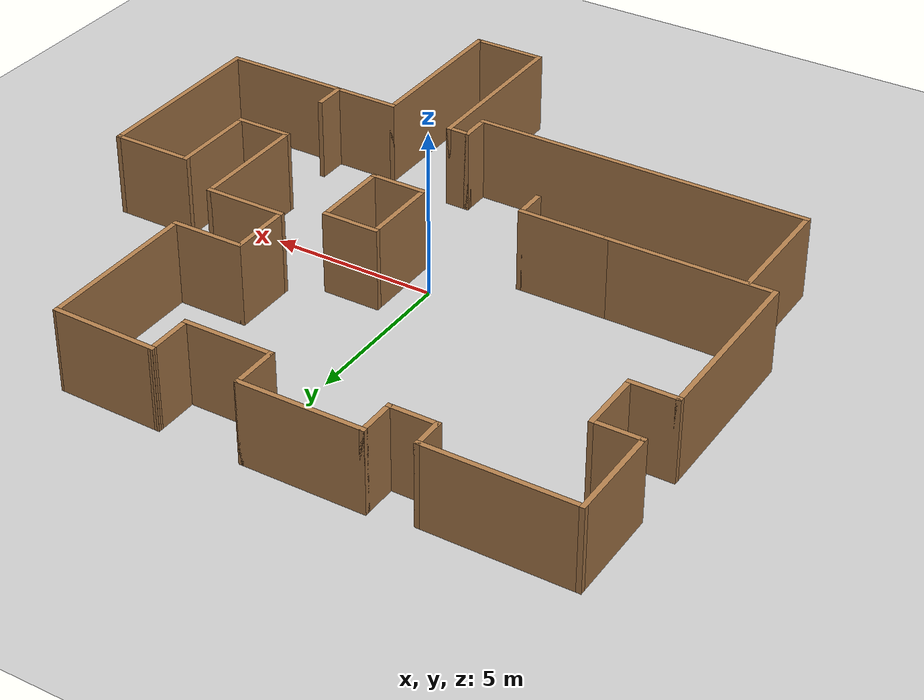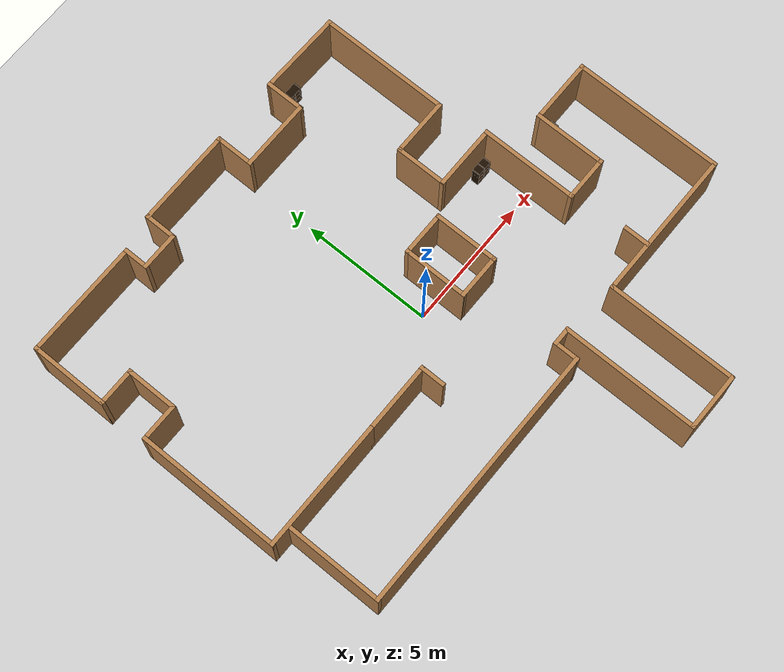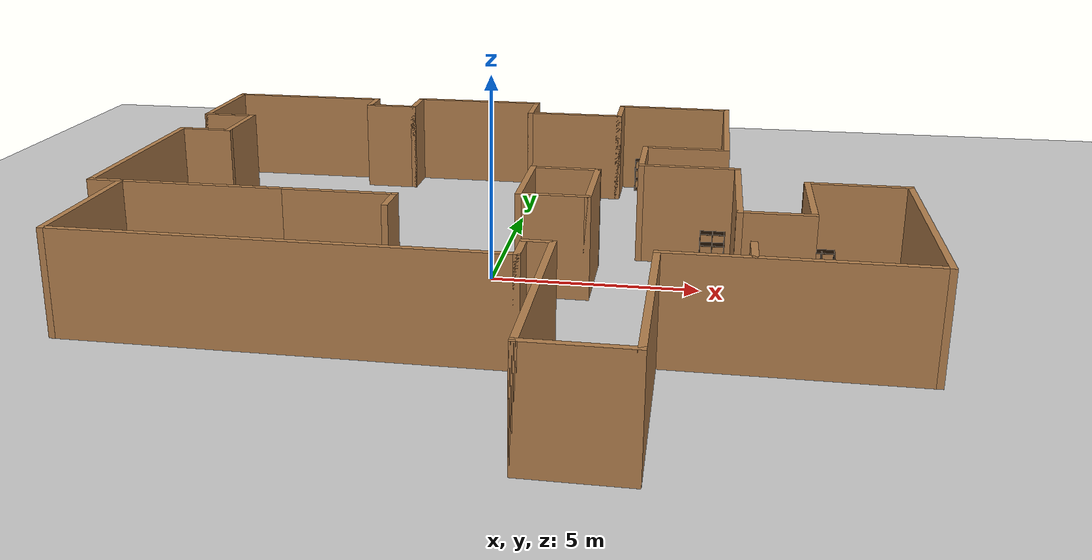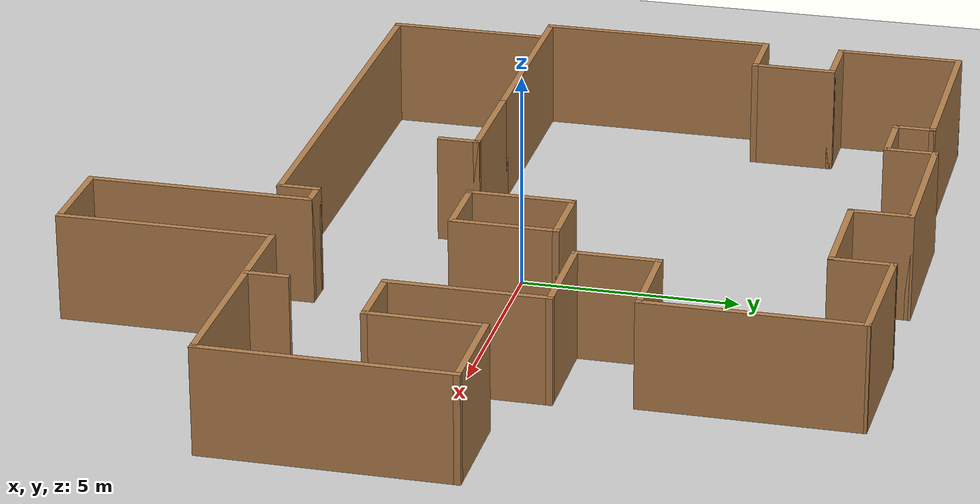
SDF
<sdf version="1.6">
 <world name="default">
  <light name="sun" type="directional">
   <pose>0 0 10 0 -0 0</pose>
   <diffuse>0.8 0.8 0.8 1</diffuse>
   <specular>0.2 0.2 0.2 1</specular>
   <attenuation>
    <range>1000</range>
    <constant>0.9</constant>
    <linear>0.01</linear>
    <quadratic>0.001</quadratic>
   </attenuation>
   <direction>-0.5 0.1 -0.9</direction>
  </light>
  <model name="ground_plane">
   <static>1</static>
   <link name="link">
    <collision name="collision">
     <geometry><plane><normal>0 0 1</normal><size>100 100</size></plane></geometry>
     <surface>
      <contact><collide_bitmask>65535</collide_bitmask></contact>
      <friction><ode><mu>100</mu><mu2>50</mu2></ode></friction>
     </surface>
    </collision>
    <visual name="visual">
     <cast_shadows>0</cast_shadows>
     <geometry><plane><normal>0 0 1</normal><size>100 100</size></plane></geometry>
     <material>
      <script><uri>file://media/materials/scripts/gazebo.material</uri><name>Gazebo/Grey</name></script>
     </material>
    </visual>
   </link>
  </model>
  <gravity>0 0 -9.8</gravity>
  <magnetic_field>6e-06 2.3e-05 -4.2e-05</magnetic_field>
  <atmosphere type="adiabatic"/>
  <physics name="default_physics" default="0" type="ode">
   <max_step_size>0.001</max_step_size>
   <real_time_factor>1</real_time_factor>
   <real_time_update_rate>1000</real_time_update_rate>
  </physics>
  <scene><ambient>0.4 0.4 0.4 1</ambient><background>0.7 0.7 0.7 1</background><shadows>1</shadows></scene>
  <audio><device>default</device></audio>
  <spherical_coordinates>
   <surface_model>EARTH_WGS84</surface_model>
   <latitude_deg>0</latitude_deg>
   <longitude_deg>0</longitude_deg>
   <elevation>0</elevation>
   <heading_deg>0</heading_deg>
  </spherical_coordinates>
  <model name="map_102">
   <pose>0.145252 -0.336175 0 0 -0 0</pose>
   <link name="Wall_21">
    <collision name="Wall_21_Collision">
     <geometry><box><size>2 0.15 2.5</size></box></geometry>
     <pose>0 0 1.25 0 -0 0</pose>
    </collision>
    <visual name="Wall_21_Visual">
     <pose>0 0 1.25 0 -0 0</pose>
     <geometry><box><size>2 0.15 2.5</size></box></geometry>
     <material>
      <script><uri>file://media/materials/scripts/gazebo.material</uri><name>Gazebo/Wood</name></script>
      <ambient>1 1 1 1</ambient>
     </material>
     <meta><layer>0</layer></meta>
    </visual>
    <pose>-8.23307 5.08367 0 0 -0 -1.5708</pose>
   </link>
   <link name="Wall_22">
    <collision name="Wall_22_Collision">
     <geometry><box><size>1.5 0.15 2.5</size></box></geometry>
     <pose>0 0 1.25 0 -0 0</pose>
    </collision>
    <visual name="Wall_22_Visual">
     <pose>0 0 1.25 0 -0 0</pose>
     <geometry><box><size>1.5 0.15 2.5</size></box></geometry>
     <material>
      <script><uri>file://media/materials/scripts/gazebo.material</uri><name>Gazebo/Wood</name></script>
      <ambient>1 1 1 1</ambient>
     </material>
     <meta><layer>0</layer></meta>
    </visual>
    <pose>-8.90807 4.15867 0 0 -0 3.14159</pose>
   </link>
   <link name="Wall_23">
    <collision name="Wall_23_Collision">
     <geometry><box><size>5.5 0.15 2.5</size></box></geometry>
     <pose>0 0 1.25 0 -0 0</pose>
    </collision>
    <visual name="Wall_23_Visual">
     <pose>0 0 1.25 0 -0 0</pose>
     <geometry><box><size>5.5 0.15 2.5</size></box></geometry>
     <material>
      <script><uri>file://media/materials/scripts/gazebo.material</uri><name>Gazebo/Wood</name></script>
      <ambient>1 1 1 1</ambient>
     </material>
     <meta><layer>0</layer></meta>
    </visual>
    <pose>-9.58307 1.48367 0 0 -0 -1.5708</pose>
   </link>
   <link name="Wall_24">
    <collision name="Wall_24_Collision">
     <geometry><box><size>5 0.15 2.5</size></box></geometry>
     <pose>0 0 1.25 0 -0 0</pose>
    </collision>
    <visual name="Wall_24_Visual">
     <pose>0 0 1.25 0 -0 0</pose>
     <geometry><box><size>5 0.15 2.5</size></box></geometry>
     <material>
      <script><uri>file://media/materials/scripts/gazebo.material</uri><name>Gazebo/Wood</name></script>
      <ambient>1 1 1 1</ambient>
     </material>
     <meta><layer>0</layer></meta>
    </visual>
    <pose>-7.15807 -1.19133 0 0 -0 0</pose>
   </link>
   <link name="Wall_28">
    <collision name="Wall_28_Collision">
     <geometry><box><size>3.75 0.15 2.5</size></box></geometry>
     <pose>0 0 1.25 0 -0 0</pose>
    </collision>
    <visual name="Wall_28_Visual">
     <pose>0 0 1.25 0 -0 0</pose>
     <geometry><box><size>3.75 0.15 2.5</size></box></geometry>
     <material>
      <script><uri>file://media/materials/scripts/gazebo.material</uri><name>Gazebo/Wood</name></script>
      <ambient>1 1 1 1</ambient>
     </material>
     <meta><layer>0</layer></meta>
    </visual>
    <pose>-8.81693 -3.06034 0 0 -0 -1.5708</pose>
   </link>
   <link name="Wall_38">
    <collision name="Wall_38_Collision">
     <geometry><box><size>10.25 0.15 2.5</size></box></geometry>
     <pose>0 0 1.25 0 -0 0</pose>
    </collision>
    <visual name="Wall_38_Visual">
     <pose>0 0 1.25 0 -0 0</pose>
     <geometry><box><size>10.25 0.15 2.5</size></box></geometry>
     <material>
      <script><uri>file://media/materials/scripts/gazebo.material</uri><name>Gazebo/Wood</name></script>
      <ambient>1 1 1 1</ambient>
     </material>
     <meta><layer>0</layer></meta>
    </visual>
    <pose>-3.76693 -4.86034 0 0 -0 0</pose>
   </link>
   <link name="Wall_39">
    <collision name="Wall_39_Collision">
     <geometry><box><size>1 0.15 2.5</size></box></geometry>
     <pose>0 0 1.25 0 -0 0</pose>
    </collision>
    <visual name="Wall_39_Visual">
     <pose>0 0 1.25 0 -0 0</pose>
     <geometry><box><size>1 0.15 2.5</size></box></geometry>
     <material>
      <script><uri>file://media/materials/scripts/gazebo.material</uri><name>Gazebo/Wood</name></script>
      <ambient>1 1 1 1</ambient>
     </material>
     <meta><layer>0</layer></meta>
    </visual>
    <pose>1.28307 -4.43534 0 0 -0 1.5708</pose>
   </link>
   <link name="Wall_40">
    <collision name="Wall_40_Collision">
     <geometry><box><size>0.75 0.15 2.5</size></box></geometry>
     <pose>0 0 1.25 0 -0 0</pose>
    </collision>
    <visual name="Wall_40_Visual">
     <pose>0 0 1.25 0 -0 0</pose>
     <geometry><box><size>0.75 0.15 2.5</size></box></geometry>
     <material>
      <script><uri>file://media/materials/scripts/gazebo.material</uri><name>Gazebo/Wood</name></script>
      <ambient>1 1 1 1</ambient>
     </material>
     <meta><layer>0</layer></meta>
    </visual>
    <pose>1.58307 -4.01034 0 0 -0 0</pose>
   </link>
   <link name="Wall_41">
    <collision name="Wall_41_Collision">
     <geometry><box><size>5.25 0.15 2.5</size></box></geometry>
     <pose>0 0 1.25 0 -0 0</pose>
    </collision>
    <visual name="Wall_41_Visual">
     <pose>0 0 1.25 0 -0 0</pose>
     <geometry><box><size>5.25 0.15 2.5</size></box></geometry>
     <material>
      <script><uri>file://media/materials/scripts/gazebo.material</uri><name>Gazebo/Wood</name></script>
      <ambient>1 1 1 1</ambient>
     </material>
     <meta><layer>0</layer></meta>
    </visual>
    <pose>1.88307 -6.56034 0 0 -0 -1.5708</pose>
   </link>
   <link name="Wall_42">
    <collision name="Wall_42_Collision">
     <geometry><box><size>2.25 0.15 2.5</size></box></geometry>
     <pose>0 0 1.25 0 -0 0</pose>
    </collision>
    <visual name="Wall_42_Visual">
     <pose>0 0 1.25 0 -0 0</pose>
     <geometry><box><size>2.25 0.15 2.5</size></box></geometry>
     <material>
      <script><uri>file://media/materials/scripts/gazebo.material</uri><name>Gazebo/Wood</name></script>
      <ambient>1 1 1 1</ambient>
     </material>
     <meta><layer>0</layer></meta>
    </visual>
    <pose>2.93307 -9.11034 0 0 -0 0</pose>
   </link>
   <link name="Wall_43">
    <collision name="Wall_43_Collision">
     <geometry><box><size>5 0.15 2.5</size></box></geometry>
     <pose>0 0 1.25 0 -0 0</pose>
    </collision>
    <visual name="Wall_43_Visual">
     <pose>0 0 1.25 0 -0 0</pose>
     <geometry><box><size>5 0.15 2.5</size></box></geometry>
     <material>
      <script><uri>file://media/materials/scripts/gazebo.material</uri><name>Gazebo/Wood</name></script>
      <ambient>1 1 1 1</ambient>
     </material>
     <meta><layer>0</layer></meta>
    </visual>
    <pose>3.98307 -6.68534 0 0 -0 1.5708</pose>
   </link>
   <link name="Wall_44">
    <collision name="Wall_44_Collision">
     <geometry><box><size>5.75 0.15 2.5</size></box></geometry>
     <pose>0 0 1.25 0 -0 0</pose>
    </collision>
    <visual name="Wall_44_Visual">
     <pose>0 0 1.25 0 -0 0</pose>
     <geometry><box><size>5.75 0.15 2.5</size></box></geometry>
     <material>
      <script><uri>file://media/materials/scripts/gazebo.material</uri><name>Gazebo/Wood</name></script>
      <ambient>1 1 1 1</ambient>
     </material>
     <meta><layer>0</layer></meta>
    </visual>
    <pose>6.78307 -4.26034 0 0 -0 0</pose>
   </link>
   <link name="Wall_46">
    <collision name="Wall_46_Collision">
     <geometry><box><size>5.75 0.15 2.5</size></box></geometry>
     <pose>0 0 1.25 0 -0 0</pose>
    </collision>
    <visual name="Wall_46_Visual">
     <pose>0 0 1.25 0 -0 0</pose>
     <geometry><box><size>5.75 0.15 2.5</size></box></geometry>
     <material>
      <script><uri>file://media/materials/scripts/gazebo.material</uri><name>Gazebo/Wood</name></script>
      <ambient>1 1 1 1</ambient>
     </material>
     <meta><layer>0</layer></meta>
    </visual>
    <pose>9.58307 -1.46034 0 0 -0 1.5708</pose>
   </link>
   <link name="Wall_47">
    <collision name="Wall_47_Collision">
     <geometry><box><size>2.5 0.15 2.5</size></box></geometry>
     <pose>0 0 1.25 0 -0 0</pose>
    </collision>
    <visual name="Wall_47_Visual">
     <pose>0 0 1.25 0 -0 0</pose>
     <geometry><box><size>2.5 0.15 2.5</size></box></geometry>
     <material>
      <script><uri>file://media/materials/scripts/gazebo.material</uri><name>Gazebo/Wood</name></script>
      <ambient>1 1 1 1</ambient>
     </material>
     <meta><layer>0</layer></meta>
    </visual>
    <pose>8.40807 1.33966 0 0 -0 3.14159</pose>
   </link>
   <link name="Wall_48">
    <collision name="Wall_48_Collision">
     <geometry><box><size>2.75 0.15 2.5</size></box></geometry>
     <pose>0 0 1.25 0 -0 0</pose>
    </collision>
    <visual name="Wall_48_Visual">
     <pose>0 0 1.25 0 -0 0</pose>
     <geometry><box><size>2.75 0.15 2.5</size></box></geometry>
     <material>
      <script><uri>file://media/materials/scripts/gazebo.material</uri><name>Gazebo/Wood</name></script>
      <ambient>1 1 1 1</ambient>
     </material>
     <meta><layer>0</layer></meta>
    </visual>
    <pose>7.23307 0.039658 0 0 -0 -1.5708</pose>
   </link>
   <link name="Wall_49">
    <collision name="Wall_49_Collision">
     <geometry><box><size>1.75 0.15 2.5</size></box></geometry>
     <pose>0 0 1.25 0 -0 0</pose>
    </collision>
    <visual name="Wall_49_Visual">
     <pose>0 0 1.25 0 -0 0</pose>
     <geometry><box><size>1.75 0.15 2.5</size></box></geometry>
     <material>
      <script><uri>file://media/materials/scripts/gazebo.material</uri><name>Gazebo/Wood</name></script>
      <ambient>1 1 1 1</ambient>
     </material>
     <meta><layer>0</layer></meta>
    </visual>
    <pose>6.43307 -1.26034 0 0 -0 3.14159</pose>
   </link>
   <link name="Wall_50">
    <collision name="Wall_50_Collision">
     <geometry><box><size>3.75 0.15 2.5</size></box></geometry>
     <pose>0 0 1.25 0 -0 0</pose>
    </collision>
    <visual name="Wall_50_Visual">
     <pose>0 0 1.25 0 -0 0</pose>
     <geometry><box><size>3.75 0.15 2.5</size></box></geometry>
     <material>
      <script><uri>file://media/materials/scripts/gazebo.material</uri><name>Gazebo/Wood</name></script>
      <ambient>1 1 1 1</ambient>
     </material>
     <meta><layer>0</layer></meta>
    </visual>
    <pose>5.63307 0.539658 0 0 -0 1.5708</pose>
   </link>
   <link name="Wall_57">
    <collision name="Wall_57_Collision">
     <geometry><box><size>5 0.15 2.5</size></box></geometry>
     <pose>0 0 1.25 0 -0 0</pose>
    </collision>
    <visual name="Wall_57_Visual">
     <pose>0 0 1.25 0 -0 0</pose>
     <geometry><box><size>5 0.15 2.5</size></box></geometry>
     <material>
      <script><uri>file://media/materials/scripts/gazebo.material</uri><name>Gazebo/Wood</name></script>
      <ambient>1 1 1 1</ambient>
     </material>
     <meta><layer>0</layer></meta>
    </visual>
    <pose>5.38307 6.61466 0 0 -0 1.5708</pose>
   </link>
   <link name="Wall_59">
    <collision name="Wall_59_Collision">
     <geometry><box><size>4.5 0.15 2.5</size></box></geometry>
     <pose>0 0 1.25 0 -0 0</pose>
    </collision>
    <visual name="Wall_59_Visual">
     <pose>0 0 1.25 0 -0 0</pose>
     <geometry><box><size>4.5 0.15 2.5</size></box></geometry>
     <material>
      <script><uri>file://media/materials/scripts/gazebo.material</uri><name>Gazebo/Wood</name></script>
      <ambient>1 1 1 1</ambient>
     </material>
     <meta><layer>0</layer></meta>
    </visual>
    <pose>-7.40807 8.85867 0 0 -0 0</pose>
   </link>
   <link name="Wall_60">
    <collision name="Wall_60_Collision">
     <geometry><box><size>1 0.15 2.5</size></box></geometry>
     <pose>0 0 1.25 0 -0 0</pose>
    </collision>
    <visual name="Wall_60_Visual">
     <pose>0 0 1.25 0 -0 0</pose>
     <geometry><box><size>1 0.15 2.5</size></box></geometry>
     <material>
      <script><uri>file://media/materials/scripts/gazebo.material</uri><name>Gazebo/Wood</name></script>
      <ambient>1 1 1 1</ambient>
     </material>
     <meta><layer>0</layer></meta>
    </visual>
    <pose>-5.23307 8.43367 0 0 -0 -1.5708</pose>
   </link>
   <link name="Wall_61">
    <collision name="Wall_61_Collision">
     <geometry><box><size>1.5 0.15 2.5</size></box></geometry>
     <pose>0 0 1.25 0 -0 0</pose>
    </collision>
    <visual name="Wall_61_Visual">
     <pose>0 0 1.25 0 -0 0</pose>
     <geometry><box><size>1.5 0.15 2.5</size></box></geometry>
     <material>
      <script><uri>file://media/materials/scripts/gazebo.material</uri><name>Gazebo/Wood</name></script>
      <ambient>1 1 1 1</ambient>
     </material>
     <meta><layer>0</layer></meta>
    </visual>
    <pose>-4.55807 8.00867 0 0 -0 0</pose>
   </link>
   <link name="Wall_62">
    <collision name="Wall_62_Collision">
     <geometry><box><size>1.25 0.15 2.5</size></box></geometry>
     <pose>0 0 1.25 0 -0 0</pose>
    </collision>
    <visual name="Wall_62_Visual">
     <pose>0 0 1.25 0 -0 0</pose>
     <geometry><box><size>1.25 0.15 2.5</size></box></geometry>
     <material>
      <script><uri>file://media/materials/scripts/gazebo.material</uri><name>Gazebo/Wood</name></script>
      <ambient>1 1 1 1</ambient>
     </material>
     <meta><layer>0</layer></meta>
    </visual>
    <pose>-3.88307 8.55867 0 0 -0 1.5708</pose>
   </link>
   <link name="Wall_63">
    <collision name="Wall_63_Collision">
     <geometry><box><size>3.75 0.15 2.5</size></box></geometry>
     <pose>0 0 1.25 0 -0 0</pose>
    </collision>
    <visual name="Wall_63_Visual">
     <pose>0 0 1.25 0 -0 0</pose>
     <geometry><box><size>3.75 0.15 2.5</size></box></geometry>
     <material>
      <script><uri>file://media/materials/scripts/gazebo.material</uri><name>Gazebo/Wood</name></script>
      <ambient>1 1 1 1</ambient>
     </material>
     <meta><layer>0</layer></meta>
    </visual>
    <pose>-2.08307 9.10867 0 0 -0 0</pose>
   </link>
   <link name="Wall_64">
    <collision name="Wall_64_Collision">
     <geometry><box><size>1.5 0.15 2.5</size></box></geometry>
     <pose>0 0 1.25 0 -0 0</pose>
    </collision>
    <visual name="Wall_64_Visual">
     <pose>0 0 1.25 0 -0 0</pose>
     <geometry><box><size>1.5 0.15 2.5</size></box></geometry>
     <material>
      <script><uri>file://media/materials/scripts/gazebo.material</uri><name>Gazebo/Wood</name></script>
      <ambient>1 1 1 1</ambient>
     </material>
     <meta><layer>0</layer></meta>
    </visual>
    <pose>-0.28307 8.43367 0 0 -0 -1.5708</pose>
   </link>
   <link name="Wall_65">
    <collision name="Wall_65_Collision">
     <geometry><box><size>2.75 0.15 2.5</size></box></geometry>
     <pose>0 0 1.25 0 -0 0</pose>
    </collision>
    <visual name="Wall_65_Visual">
     <pose>0 0 1.25 0 -0 0</pose>
     <geometry><box><size>2.75 0.15 2.5</size></box></geometry>
     <material>
      <script><uri>file://media/materials/scripts/gazebo.material</uri><name>Gazebo/Wood</name></script>
      <ambient>1 1 1 1</ambient>
     </material>
     <meta><layer>0</layer></meta>
    </visual>
    <pose>1.01693 7.75867 0 0 -0 0</pose>
   </link>
   <link name="Wall_66">
    <collision name="Wall_66_Collision">
     <geometry><box><size>1.5 0.15 2.5</size></box></geometry>
     <pose>0 0 1.25 0 -0 0</pose>
    </collision>
    <visual name="Wall_66_Visual">
     <pose>0 0 1.25 0 -0 0</pose>
     <geometry><box><size>1.5 0.15 2.5</size></box></geometry>
     <material>
      <script><uri>file://media/materials/scripts/gazebo.material</uri><name>Gazebo/Wood</name></script>
      <ambient>1 1 1 1</ambient>
     </material>
     <meta><layer>0</layer></meta>
    </visual>
    <pose>2.31693 8.43367 0 0 -0 1.5708</pose>
   </link>
   <link name="Wall_67">
    <collision name="Wall_67_Collision">
     <geometry><box><size>3.21692 0.15 2.5</size></box></geometry>
     <pose>0 0 1.25 0 -0 0</pose>
    </collision>
    <visual name="Wall_67_Visual">
     <pose>0 0 1.25 0 -0 0</pose>
     <geometry><box><size>3.21692 0.15 2.5</size></box></geometry>
     <material>
      <script><uri>file://media/materials/scripts/gazebo.material</uri><name>Gazebo/Wood</name></script>
      <ambient>1 1 1 1</ambient>
     </material>
     <meta><layer>0</layer></meta>
    </visual>
    <pose>3.85 9.07417 0 0 -0 -0.022505</pose>
   </link>
   <link name="Wall_69">
    <collision name="Wall_69_Collision">
     <geometry><box><size>2.5 0.15 2.5</size></box></geometry>
     <pose>0 0 1.25 0 -0 0</pose>
    </collision>
    <visual name="Wall_69_Visual">
     <pose>0 0 1.25 0 -0 0</pose>
     <geometry><box><size>2.5 0.15 2.5</size></box></geometry>
     <material>
      <script><uri>file://media/materials/scripts/gazebo.material</uri><name>Gazebo/Wood</name></script>
      <ambient>1 1 1 1</ambient>
     </material>
     <meta><layer>0</layer></meta>
    </visual>
    <pose>4.45807 2.33966 0 0 -0 3.14159</pose>
   </link>
   <link name="Wall_7">
    <collision name="Wall_7_Collision">
     <geometry><box><size>3 0.15 2.5</size></box></geometry>
     <pose>0 0 1.25 0 -0 0</pose>
    </collision>
    <visual name="Wall_7_Visual">
     <pose>0 0 1.25 0 -0 0</pose>
     <geometry><box><size>3 0.15 2.5</size></box></geometry>
     <material>
      <script><uri>file://media/materials/scripts/gazebo.material</uri><name>Gazebo/Wood</name></script>
      <ambient>1 1 1 1</ambient>
     </material>
     <meta><layer>0</layer></meta>
    </visual>
    <pose>-9.58307 7.43367 0 0 -0 -1.5708</pose>
   </link>
   <link name="Wall_70">
    <collision name="Wall_70_Collision">
     <geometry><box><size>2 0.15 2.5</size></box></geometry>
     <pose>0 0 1.25 0 -0 0</pose>
    </collision>
    <visual name="Wall_70_Visual">
     <pose>0 0 1.25 0 -0 0</pose>
     <geometry><box><size>2 0.15 2.5</size></box></geometry>
     <material>
      <script><uri>file://media/materials/scripts/gazebo.material</uri><name>Gazebo/Wood</name></script>
      <ambient>1 1 1 1</ambient>
     </material>
     <meta><layer>0</layer></meta>
    </visual>
    <pose>3.28307 3.26466 0 0 -0 1.5708</pose>
   </link>
   <link name="Wall_72">
    <collision name="Wall_72_Collision">
     <geometry><box><size>2.25 0.15 2.5</size></box></geometry>
     <pose>0 0 1.25 0 -0 0</pose>
    </collision>
    <visual name="Wall_72_Visual">
     <pose>0 0 1.25 0 -0 0</pose>
     <geometry><box><size>2.25 0.15 2.5</size></box></geometry>
     <material>
      <script><uri>file://media/materials/scripts/gazebo.material</uri><name>Gazebo/Wood</name></script>
      <ambient>1 1 1 1</ambient>
     </material>
     <meta><layer>0</layer></meta>
    </visual>
    <pose>4.33307 4.18966 0 0 -0 3.14159</pose>
   </link>
   <link name="Wall_74">
    <collision name="Wall_74_Collision">
     <geometry><box><size>2.5 0.15 2.5</size></box></geometry>
     <pose>0 0 1.25 0 -0 0</pose>
    </collision>
    <visual name="Wall_74_Visual">
     <pose>0 0 1.25 0 -0 0</pose>
     <geometry><box><size>2.5 0.15 2.5</size></box></geometry>
     <material>
      <script><uri>file://media/materials/scripts/gazebo.material</uri><name>Gazebo/Wood</name></script>
      <ambient>1 1 1 1</ambient>
     </material>
     <meta><layer>0</layer></meta>
    </visual>
    <pose>0.658363 0.517996 0 0 -0 -1.5708</pose>
   </link>
   <link name="Wall_75">
    <collision name="Wall_75_Collision">
     <geometry><box><size>1.75 0.15 2.5</size></box></geometry>
     <pose>0 0 1.25 0 -0 0</pose>
    </collision>
    <visual name="Wall_75_Visual">
     <pose>0 0 1.25 0 -0 0</pose>
     <geometry><box><size>1.75 0.15 2.5</size></box></geometry>
     <material>
      <script><uri>file://media/materials/scripts/gazebo.material</uri><name>Gazebo/Wood</name></script>
      <ambient>1 1 1 1</ambient>
     </material>
     <meta><layer>0</layer></meta>
    </visual>
    <pose>1.45836 -0.657004 0 0 -0 0</pose>
   </link>
   <link name="Wall_76">
    <collision name="Wall_76_Collision">
     <geometry><box><size>2.5 0.15 2.5</size></box></geometry>
     <pose>0 0 1.25 0 -0 0</pose>
    </collision>
    <visual name="Wall_76_Visual">
     <pose>0 0 1.25 0 -0 0</pose>
     <geometry><box><size>2.5 0.15 2.5</size></box></geometry>
     <material>
      <script><uri>file://media/materials/scripts/gazebo.material</uri><name>Gazebo/Wood</name></script>
      <ambient>1 1 1 1</ambient>
     </material>
     <meta><layer>0</layer></meta>
    </visual>
    <pose>2.25836 0.517996 0 0 -0 1.5708</pose>
   </link>
   <link name="Wall_77">
    <collision name="Wall_77_Collision">
     <geometry><box><size>1.75 0.15 2.5</size></box></geometry>
     <pose>0 0 1.25 0 -0 0</pose>
    </collision>
    <visual name="Wall_77_Visual">
     <pose>0 0 1.25 0 -0 0</pose>
     <geometry><box><size>1.75 0.15 2.5</size></box></geometry>
     <material>
      <script><uri>file://media/materials/scripts/gazebo.material</uri><name>Gazebo/Wood</name></script>
      <ambient>1 1 1 1</ambient>
     </material>
     <meta><layer>0</layer></meta>
    </visual>
    <pose>1.45836 1.693 0 0 -0 3.14159</pose>
   </link>
   <link name="Wall_79">
    <collision name="Wall_79_Collision">
     <geometry><box><size>2.75 0.15 2.5</size></box></geometry>
     <pose>0 0 1.25 0 -0 0</pose>
    </collision>
    <visual name="Wall_79_Visual">
     <pose>0 0 1.25 0 -0 0</pose>
     <geometry><box><size>2.75 0.15 2.5</size></box></geometry>
     <material>
      <script><uri>file://media/materials/scripts/gazebo.material</uri><name>Gazebo/Wood</name></script>
      <ambient>1 1 1 1</ambient>
     </material>
     <meta><layer>0</layer></meta>
    </visual>
    <pose>-3.43307 -1.19133 0 0 -0 0</pose>
   </link>
   <link name="Wall_8">
    <collision name="Wall_8_Collision">
     <geometry><box><size>1.5 0.15 2.5</size></box></geometry>
     <pose>0 0 1.25 0 -0 0</pose>
    </collision>
    <visual name="Wall_8_Visual">
     <pose>0 0 1.25 0 -0 0</pose>
     <geometry><box><size>1.5 0.15 2.5</size></box></geometry>
     <material>
      <script><uri>file://media/materials/scripts/gazebo.material</uri><name>Gazebo/Wood</name></script>
      <ambient>1 1 1 1</ambient>
     </material>
     <meta><layer>0</layer></meta>
    </visual>
    <pose>-8.90807 6.00867 0 0 -0 0</pose>
   </link>
   <link name="Wall_80">
    <collision name="Wall_80_Collision">
     <geometry><box><size>1 0.15 2.5</size></box></geometry>
     <pose>0 0 1.25 0 -0 0</pose>
    </collision>
    <visual name="Wall_80_Visual">
     <pose>0 0 1.25 0 -0 0</pose>
     <geometry><box><size>1 0.15 2.5</size></box></geometry>
     <material>
      <script><uri>file://media/materials/scripts/gazebo.material</uri><name>Gazebo/Wood</name></script>
      <ambient>1 1 1 1</ambient>
     </material>
     <meta><layer>0</layer></meta>
    </visual>
    <pose>-2.13307 -1.61633 0 0 -0 -1.5708</pose>
   </link>
   <link name="Wall_83">
    <collision name="Wall_83_Collision">
     <geometry><box><size>1 0.15 2.5</size></box></geometry>
     <pose>0 0 1.25 0 -0 0</pose>
    </collision>
    <visual name="Wall_83_Visual">
     <pose>0 0 1.25 0 -0 0</pose>
     <geometry><box><size>1 0.15 2.5</size></box></geometry>
     <material>
      <script><uri>file://media/materials/scripts/gazebo.material</uri><name>Gazebo/Wood</name></script>
      <ambient>1 1 1 1</ambient>
     </material>
     <meta><layer>0</layer></meta>
    </visual>
    <pose>5.88823 -3.78868 0 0 -0 1.5708</pose>
   </link>
   <static>1</static>
  </model>
  <model name="6_Cube_StorageE">
   <link name="Wall_0">
    <pose>0 0 0.01 0 -0 0</pose>
    <inertial>
     <mass>1.6201</mass>
     <inertia><ixx>0.0119</ixx><iyy>0.0631</iyy><izz>0.0513</izz><ixy>0</ixy><ixz>0</ixz><iyz>0</iyz></inertia>
    </inertial>
    <collision name="Wall_0_Collision"><geometry><box><size>0.616 0.296 0.02</size></box></geometry></collision>
    <visual name="Wall_0_Visual">
     <geometry><box><size>0.616 0.296 0.02</size></box></geometry>
     <material>
      <script><uri>file://media/materials/scripts/gazebo.material</uri><name>Gazebo/Grey</name></script>
      <ambient>0.105882 0.0509804 0 1</ambient>
     </material>
    </visual>
   </link>
   <joint name="0_2" type="fixed">
    <pose>-0.308 0 0 0 -0 0</pose>
    <parent>Wall_2</parent>
    <child>Wall_0</child>
    <axis>
     <xyz>1 0 0</xyz>
     <use_parent_model_frame>0</use_parent_model_frame>
     <limit><lower>-1e+16</lower><upper>1e+16</upper></limit>
    </axis>
   </joint>
   <joint name="0_12" type="fixed">
    <parent>Wall_12</parent>
    <child>Wall_0</child>
    <axis>
     <xyz>0 0 1</xyz>
     <use_parent_model_frame>0</use_parent_model_frame>
     <limit><lower>-1e+16</lower><upper>1e+16</upper></limit>
    </axis>
   </joint>
   <joint name="0_4" type="fixed">
    <pose>0.308 0 0 0 -0 0</pose>
    <parent>Wall_4</parent>
    <child>Wall_0</child>
    <axis>
     <xyz>1 0 0</xyz>
     <use_parent_model_frame>0</use_parent_model_frame>
     <limit><lower>-1e+16</lower><upper>1e+16</upper></limit>
    </axis>
   </joint>
   <link name="Wall_10">
    <pose>0 0 0.61 0 -0 0</pose>
    <inertial>
     <mass>1.6201</mass>
     <inertia><ixx>0.0119</ixx><iyy>0.0631</iyy><izz>0.0513</izz><ixy>0</ixy><ixz>0</ixz><iyz>0</iyz></inertia>
    </inertial>
    <collision name="Wall_10_Collision"><geometry><box><size>0.616 0.296 0.02</size></box></geometry></collision>
    <visual name="Wall_10_Visual">
     <geometry><box><size>0.616 0.296 0.02</size></box></geometry>
     <material>
      <script><uri>file://media/materials/scripts/gazebo.material</uri><name>Gazebo/Grey</name></script>
      <ambient>0.105882 0.0509804 0 1</ambient>
     </material>
    </visual>
   </link>
   <joint name="10_2" type="fixed">
    <pose>-0.308 0 0 0 -0 0</pose>
    <parent>Wall_2</parent>
    <child>Wall_10</child>
    <axis>
     <xyz>1 0 0</xyz>
     <use_parent_model_frame>0</use_parent_model_frame>
     <limit><lower>-1e+16</lower><upper>1e+16</upper></limit>
    </axis>
   </joint>
   <joint name="10_12" type="fixed">
    <parent>Wall_12</parent>
    <child>Wall_10</child>
    <axis>
     <xyz>0 0 1</xyz>
     <use_parent_model_frame>0</use_parent_model_frame>
     <limit><lower>-1e+16</lower><upper>1e+16</upper></limit>
    </axis>
   </joint>
   <joint name="10_4" type="fixed">
    <pose>0.308 0 0 0 -0 0</pose>
    <parent>Wall_4</parent>
    <child>Wall_10</child>
    <axis>
     <xyz>1 0 0</xyz>
     <use_parent_model_frame>0</use_parent_model_frame>
     <limit><lower>-1e+16</lower><upper>1e+16</upper></limit>
    </axis>
   </joint>
   <link name="Wall_12">
    <pose>0 0 0.4575 0 -0 0</pose>
    <inertial>
     <mass>2.4065</mass>
     <inertia><ixx>0.0177</ixx><iyy>0.1855</iyy><izz>0.168</izz><ixy>0</ixy><ixz>0</ixz><iyz>0</iyz></inertia>
    </inertial>
    <collision name="Wall_12_Collision"><geometry><box><size>0.02 0.296 0.915</size></box></geometry></collision>
    <visual name="Wall_12_Visual">
     <geometry><box><size>0.02 0.296 0.915</size></box></geometry>
     <material>
      <script><uri>file://media/materials/scripts/gazebo.material</uri><name>Gazebo/Grey</name></script>
      <ambient>0.105882 0.0509804 0 1</ambient>
     </material>
    </visual>
   </link>
   <link name="Wall_2">
    <pose>-0.298 0 0.4575 0 -0 0</pose>
    <inertial>
     <mass>2.4065</mass>
     <inertia><ixx>0.0177</ixx><iyy>0.1855</iyy><izz>0.168</izz><ixy>0</ixy><ixz>0</ixz><iyz>0</iyz></inertia>
    </inertial>
    <collision name="Wall_2_Collision"><geometry><box><size>0.02 0.296 0.915</size></box></geometry></collision>
    <visual name="Wall_2_Visual">
     <geometry><box><size>0.02 0.296 0.915</size></box></geometry>
     <material>
      <script><uri>file://media/materials/scripts/gazebo.material</uri><name>Gazebo/Grey</name></script>
      <ambient>0.105882 0.0509804 0 1</ambient>
     </material>
    </visual>
   </link>
   <link name="Wall_4">
    <pose>0.298 0 0.4575 0 -0 0</pose>
    <inertial>
     <mass>2.4065</mass>
     <inertia><ixx>0.0177</ixx><iyy>0.1855</iyy><izz>0.168</izz><ixy>0</ixy><ixz>0</ixz><iyz>0</iyz></inertia>
    </inertial>
    <collision name="Wall_4_Collision"><geometry><box><size>0.02 0.296 0.915</size></box></geometry></collision>
    <visual name="Wall_4_Visual">
     <geometry><box><size>0.02 0.296 0.915</size></box></geometry>
     <material>
      <script><uri>file://media/materials/scripts/gazebo.material</uri><name>Gazebo/Grey</name></script>
      <ambient>0.105882 0.0509804 0 1</ambient>
     </material>
    </visual>
   </link>
   <link name="Wall_6">
    <pose>0 0 0.905 0 -0 0</pose>
    <inertial>
     <mass>1.6201</mass>
     <inertia><ixx>0.0119</ixx><iyy>0.0631</iyy><izz>0.0513</izz><ixy>0</ixy><ixz>0</ixz><iyz>0</iyz></inertia>
    </inertial>
    <collision name="Wall_6_Collision"><geometry><box><size>0.616 0.296 0.02</size></box></geometry></collision>
    <visual name="Wall_6_Visual">
     <geometry><box><size>0.616 0.296 0.02</size></box></geometry>
     <material>
      <script><uri>file://media/materials/scripts/gazebo.material</uri><name>Gazebo/Grey</name></script>
      <ambient>0.105882 0.0509804 0 1</ambient>
     </material>
    </visual>
   </link>
   <joint name="6_2" type="fixed">
    <pose>-0.308 0 0 0 -0 0</pose>
    <parent>Wall_2</parent>
    <child>Wall_6</child>
    <axis>
     <xyz>2 0 0</xyz>
     <use_parent_model_frame>0</use_parent_model_frame>
     <limit><lower>-1e+16</lower><upper>1e+16</upper></limit>
    </axis>
   </joint>
   <joint name="6_12" type="fixed">
    <parent>Wall_12</parent>
    <child>Wall_6</child>
    <axis>
     <xyz>0 0 1</xyz>
     <use_parent_model_frame>0</use_parent_model_frame>
     <limit><lower>-1e+16</lower><upper>1e+16</upper></limit>
    </axis>
   </joint>
   <joint name="6_4" type="fixed">
    <pose>0.308 0 0 0 -0 0</pose>
    <parent>Wall_4</parent>
    <child>Wall_6</child>
    <axis>
     <xyz>1 0 0</xyz>
     <use_parent_model_frame>0</use_parent_model_frame>
     <limit><lower>-1e+16</lower><upper>1e+16</upper></limit>
    </axis>
   </joint>
   <link name="Wall_8">
    <pose>0 0 0.305 0 -0 0</pose>
    <inertial>
     <mass>1.6201</mass>
     <inertia><ixx>0.0119</ixx><iyy>0.0631</iyy><izz>0.0513</izz><ixy>0</ixy><ixz>0</ixz><iyz>0</iyz></inertia>
    </inertial>
    <collision name="Wall_8_Collision"><geometry><box><size>0.616 0.296 0.02</size></box></geometry></collision>
    <visual name="Wall_8_Visual">
     <geometry><box><size>0.616 0.296 0.02</size></box></geometry>
     <material>
      <script><uri>file://media/materials/scripts/gazebo.material</uri><name>Gazebo/Grey</name></script>
      <ambient>0.105882 0.0509804 0 1</ambient>
     </material>
    </visual>
   </link>
   <joint name="8_2" type="fixed">
    <pose>-0.308 0 0 0 -0 0</pose>
    <parent>Wall_2</parent>
    <child>Wall_8</child>
    <axis>
     <xyz>1 0 0</xyz>
     <use_parent_model_frame>0</use_parent_model_frame>
     <limit><lower>-1e+16</lower><upper>1e+16</upper></limit>
    </axis>
   </joint>
   <joint name="8_12" type="fixed">
    <parent>Wall_12</parent>
    <child>Wall_8</child>
    <axis>
     <xyz>0 0 1</xyz>
     <use_parent_model_frame>0</use_parent_model_frame>
     <limit><lower>-1e+16</lower><upper>1e+16</upper></limit>
    </axis>
   </joint>
   <joint name="8_4" type="fixed">
    <pose>0.308 0 0 0 -0 0</pose>
    <parent>Wall_4</parent>
    <child>Wall_8</child>
    <axis>
     <xyz>1 0 0</xyz>
     <use_parent_model_frame>0</use_parent_model_frame>
     <limit><lower>-1e+16</lower><upper>1e+16</upper></limit>
    </axis>
   </joint>
   <static>1</static>
   <pose>7.81048 0.735591 0 0 -0 0</pose>
  </model>
  <model name="6_Cube_StorageE_0">
   <link name="Wall_0">
    <pose>0 0 0.01 0 -0 0</pose>
    <inertial>
     <mass>1.6201</mass>
     <inertia><ixx>0.0119</ixx><iyy>0.0631</iyy><izz>0.0513</izz><ixy>0</ixy><ixz>0</ixz><iyz>0</iyz></inertia>
    </inertial>
    <collision name="Wall_0_Collision"><geometry><box><size>0.616 0.296 0.02</size></box></geometry></collision>
    <visual name="Wall_0_Visual">
     <geometry><box><size>0.616 0.296 0.02</size></box></geometry>
     <material>
      <script><uri>file://media/materials/scripts/gazebo.material</uri><name>Gazebo/Grey</name></script>
      <ambient>0.105882 0.0509804 0 1</ambient>
     </material>
    </visual>
   </link>
   <joint name="0_2" type="fixed">
    <pose>-0.308 0 0 0 -0 0</pose>
    <parent>Wall_2</parent>
    <child>Wall_0</child>
    <axis>
     <xyz>1 0 0</xyz>
     <use_parent_model_frame>0</use_parent_model_frame>
     <limit><lower>-1e+16</lower><upper>1e+16</upper></limit>
    </axis>
   </joint>
   <joint name="0_12" type="fixed">
    <parent>Wall_12</parent>
    <child>Wall_0</child>
    <axis>
     <xyz>0 0 1</xyz>
     <use_parent_model_frame>0</use_parent_model_frame>
     <limit><lower>-1e+16</lower><upper>1e+16</upper></limit>
    </axis>
   </joint>
   <joint name="0_4" type="fixed">
    <pose>0.308 0 0 0 -0 0</pose>
    <parent>Wall_4</parent>
    <child>Wall_0</child>
    <axis>
     <xyz>1 0 0</xyz>
     <use_parent_model_frame>0</use_parent_model_frame>
     <limit><lower>-1e+16</lower><upper>1e+16</upper></limit>
    </axis>
   </joint>
   <link name="Wall_10">
    <pose>0 0 0.61 0 -0 0</pose>
    <inertial>
     <mass>1.6201</mass>
     <inertia><ixx>0.0119</ixx><iyy>0.0631</iyy><izz>0.0513</izz><ixy>0</ixy><ixz>0</ixz><iyz>0</iyz></inertia>
    </inertial>
    <collision name="Wall_10_Collision"><geometry><box><size>0.616 0.296 0.02</size></box></geometry></collision>
    <visual name="Wall_10_Visual">
     <geometry><box><size>0.616 0.296 0.02</size></box></geometry>
     <material>
      <script><uri>file://media/materials/scripts/gazebo.material</uri><name>Gazebo/Grey</name></script>
      <ambient>0.105882 0.0509804 0 1</ambient>
     </material>
    </visual>
   </link>
   <joint name="10_2" type="fixed">
    <pose>-0.308 0 0 0 -0 0</pose>
    <parent>Wall_2</parent>
    <child>Wall_10</child>
    <axis>
     <xyz>1 0 0</xyz>
     <use_parent_model_frame>0</use_parent_model_frame>
     <limit><lower>-1e+16</lower><upper>1e+16</upper></limit>
    </axis>
   </joint>
   <joint name="10_12" type="fixed">
    <parent>Wall_12</parent>
    <child>Wall_10</child>
    <axis>
     <xyz>0 0 1</xyz>
     <use_parent_model_frame>0</use_parent_model_frame>
     <limit><lower>-1e+16</lower><upper>1e+16</upper></limit>
    </axis>
   </joint>
   <joint name="10_4" type="fixed">
    <pose>0.308 0 0 0 -0 0</pose>
    <parent>Wall_4</parent>
    <child>Wall_10</child>
    <axis>
     <xyz>1 0 0</xyz>
     <use_parent_model_frame>0</use_parent_model_frame>
     <limit><lower>-1e+16</lower><upper>1e+16</upper></limit>
    </axis>
   </joint>
   <link name="Wall_12">
    <pose>0 0 0.4575 0 -0 0</pose>
    <inertial>
     <mass>2.4065</mass>
     <inertia><ixx>0.0177</ixx><iyy>0.1855</iyy><izz>0.168</izz><ixy>0</ixy><ixz>0</ixz><iyz>0</iyz></inertia>
    </inertial>
    <collision name="Wall_12_Collision"><geometry><box><size>0.02 0.296 0.915</size></box></geometry></collision>
    <visual name="Wall_12_Visual">
     <geometry><box><size>0.02 0.296 0.915</size></box></geometry>
     <material>
      <script><uri>file://media/materials/scripts/gazebo.material</uri><name>Gazebo/Grey</name></script>
      <ambient>0.105882 0.0509804 0 1</ambient>
     </material>
    </visual>
   </link>
   <link name="Wall_2">
    <pose>-0.298 0 0.4575 0 -0 0</pose>
    <inertial>
     <mass>2.4065</mass>
     <inertia><ixx>0.0177</ixx><iyy>0.1855</iyy><izz>0.168</izz><ixy>0</ixy><ixz>0</ixz><iyz>0</iyz></inertia>
    </inertial>
    <collision name="Wall_2_Collision"><geometry><box><size>0.02 0.296 0.915</size></box></geometry></collision>
    <visual name="Wall_2_Visual">
     <geometry><box><size>0.02 0.296 0.915</size></box></geometry>
     <material>
      <script><uri>file://media/materials/scripts/gazebo.material</uri><name>Gazebo/Grey</name></script>
      <ambient>0.105882 0.0509804 0 1</ambient>
     </material>
    </visual>
   </link>
   <link name="Wall_4">
    <pose>0.298 0 0.4575 0 -0 0</pose>
    <inertial>
     <mass>2.4065</mass>
     <inertia><ixx>0.0177</ixx><iyy>0.1855</iyy><izz>0.168</izz><ixy>0</ixy><ixz>0</ixz><iyz>0</iyz></inertia>
    </inertial>
    <collision name="Wall_4_Collision"><geometry><box><size>0.02 0.296 0.915</size></box></geometry></collision>
    <visual name="Wall_4_Visual">
     <geometry><box><size>0.02 0.296 0.915</size></box></geometry>
     <material>
      <script><uri>file://media/materials/scripts/gazebo.material</uri><name>Gazebo/Grey</name></script>
      <ambient>0.105882 0.0509804 0 1</ambient>
     </material>
    </visual>
   </link>
   <link name="Wall_6">
    <pose>0 0 0.905 0 -0 0</pose>
    <inertial>
     <mass>1.6201</mass>
     <inertia><ixx>0.0119</ixx><iyy>0.0631</iyy><izz>0.0513</izz><ixy>0</ixy><ixz>0</ixz><iyz>0</iyz></inertia>
    </inertial>
    <collision name="Wall_6_Collision"><geometry><box><size>0.616 0.296 0.02</size></box></geometry></collision>
    <visual name="Wall_6_Visual">
     <geometry><box><size>0.616 0.296 0.02</size></box></geometry>
     <material>
      <script><uri>file://media/materials/scripts/gazebo.material</uri><name>Gazebo/Grey</name></script>
      <ambient>0.105882 0.0509804 0 1</ambient>
     </material>
    </visual>
   </link>
   <joint name="6_2" type="fixed">
    <pose>-0.308 0 0 0 -0 0</pose>
    <parent>Wall_2</parent>
    <child>Wall_6</child>
    <axis>
     <xyz>2 0 0</xyz>
     <use_parent_model_frame>0</use_parent_model_frame>
     <limit><lower>-1e+16</lower><upper>1e+16</upper></limit>
    </axis>
   </joint>
   <joint name="6_12" type="fixed">
    <parent>Wall_12</parent>
    <child>Wall_6</child>
    <axis>
     <xyz>0 0 1</xyz>
     <use_parent_model_frame>0</use_parent_model_frame>
     <limit><lower>-1e+16</lower><upper>1e+16</upper></limit>
    </axis>
   </joint>
   <joint name="6_4" type="fixed">
    <pose>0.308 0 0 0 -0 0</pose>
    <parent>Wall_4</parent>
    <child>Wall_6</child>
    <axis>
     <xyz>1 0 0</xyz>
     <use_parent_model_frame>0</use_parent_model_frame>
     <limit><lower>-1e+16</lower><upper>1e+16</upper></limit>
    </axis>
   </joint>
   <link name="Wall_8">
    <pose>0 0 0.305 0 -0 0</pose>
    <inertial>
     <mass>1.6201</mass>
     <inertia><ixx>0.0119</ixx><iyy>0.0631</iyy><izz>0.0513</izz><ixy>0</ixy><ixz>0</ixz><iyz>0</iyz></inertia>
    </inertial>
    <collision name="Wall_8_Collision"><geometry><box><size>0.616 0.296 0.02</size></box></geometry></collision>
    <visual name="Wall_8_Visual">
     <geometry><box><size>0.616 0.296 0.02</size></box></geometry>
     <material>
      <script><uri>file://media/materials/scripts/gazebo.material</uri><name>Gazebo/Grey</name></script>
      <ambient>0.105882 0.0509804 0 1</ambient>
     </material>
    </visual>
   </link>
   <joint name="8_2" type="fixed">
    <pose>-0.308 0 0 0 -0 0</pose>
    <parent>Wall_2</parent>
    <child>Wall_8</child>
    <axis>
     <xyz>1 0 0</xyz>
     <use_parent_model_frame>0</use_parent_model_frame>
     <limit><lower>-1e+16</lower><upper>1e+16</upper></limit>
    </axis>
   </joint>
   <joint name="8_12" type="fixed">
    <parent>Wall_12</parent>
    <child>Wall_8</child>
    <axis>
     <xyz>0 0 1</xyz>
     <use_parent_model_frame>0</use_parent_model_frame>
     <limit><lower>-1e+16</lower><upper>1e+16</upper></limit>
    </axis>
   </joint>
   <joint name="8_4" type="fixed">
    <pose>0.308 0 0 0 -0 0</pose>
    <parent>Wall_4</parent>
    <child>Wall_8</child>
    <axis>
     <xyz>1 0 0</xyz>
     <use_parent_model_frame>0</use_parent_model_frame>
     <limit><lower>-1e+16</lower><upper>1e+16</upper></limit>
    </axis>
   </joint>
   <static>1</static>
   <pose>3.21964 8.5297 0 0 -0 0</pose>
  </model>
  <model name="6_Cube_StorageE_1">
   <link name="Wall_0">
    <pose>0 0 0.01 0 -0 0</pose>
    <inertial>
     <mass>1.6201</mass>
     <inertia><ixx>0.0119</ixx><iyy>0.0631</iyy><izz>0.0513</izz><ixy>0</ixy><ixz>0</ixz><iyz>0</iyz></inertia>
    </inertial>
    <collision name="Wall_0_Collision"><geometry><box><size>0.616 0.296 0.02</size></box></geometry></collision>
    <visual name="Wall_0_Visual">
     <geometry><box><size>0.616 0.296 0.02</size></box></geometry>
     <material>
      <script><uri>file://media/materials/scripts/gazebo.material</uri><name>Gazebo/Grey</name></script>
      <ambient>0.105882 0.0509804 0 1</ambient>
     </material>
    </visual>
   </link>
   <joint name="0_2" type="fixed">
    <pose>-0.308 0 0 0 -0 0</pose>
    <parent>Wall_2</parent>
    <child>Wall_0</child>
    <axis>
     <xyz>1 0 0</xyz>
     <use_parent_model_frame>0</use_parent_model_frame>
     <limit><lower>-1e+16</lower><upper>1e+16</upper></limit>
    </axis>
   </joint>
   <joint name="0_12" type="fixed">
    <parent>Wall_12</parent>
    <child>Wall_0</child>
    <axis>
     <xyz>0 0 1</xyz>
     <use_parent_model_frame>0</use_parent_model_frame>
     <limit><lower>-1e+16</lower><upper>1e+16</upper></limit>
    </axis>
   </joint>
   <joint name="0_4" type="fixed">
    <pose>0.308 0 0 0 -0 0</pose>
    <parent>Wall_4</parent>
    <child>Wall_0</child>
    <axis>
     <xyz>1 0 0</xyz>
     <use_parent_model_frame>0</use_parent_model_frame>
     <limit><lower>-1e+16</lower><upper>1e+16</upper></limit>
    </axis>
   </joint>
   <link name="Wall_10">
    <pose>0 0 0.61 0 -0 0</pose>
    <inertial>
     <mass>1.6201</mass>
     <inertia><ixx>0.0119</ixx><iyy>0.0631</iyy><izz>0.0513</izz><ixy>0</ixy><ixz>0</ixz><iyz>0</iyz></inertia>
    </inertial>
    <collision name="Wall_10_Collision"><geometry><box><size>0.616 0.296 0.02</size></box></geometry></collision>
    <visual name="Wall_10_Visual">
     <geometry><box><size>0.616 0.296 0.02</size></box></geometry>
     <material>
      <script><uri>file://media/materials/scripts/gazebo.material</uri><name>Gazebo/Grey</name></script>
      <ambient>0.105882 0.0509804 0 1</ambient>
     </material>
    </visual>
   </link>
   <joint name="10_2" type="fixed">
    <pose>-0.308 0 0 0 -0 0</pose>
    <parent>Wall_2</parent>
    <child>Wall_10</child>
    <axis>
     <xyz>1 0 0</xyz>
     <use_parent_model_frame>0</use_parent_model_frame>
     <limit><lower>-1e+16</lower><upper>1e+16</upper></limit>
    </axis>
   </joint>
   <joint name="10_12" type="fixed">
    <parent>Wall_12</parent>
    <child>Wall_10</child>
    <axis>
     <xyz>0 0 1</xyz>
     <use_parent_model_frame>0</use_parent_model_frame>
     <limit><lower>-1e+16</lower><upper>1e+16</upper></limit>
    </axis>
   </joint>
   <joint name="10_4" type="fixed">
    <pose>0.308 0 0 0 -0 0</pose>
    <parent>Wall_4</parent>
    <child>Wall_10</child>
    <axis>
     <xyz>1 0 0</xyz>
     <use_parent_model_frame>0</use_parent_model_frame>
     <limit><lower>-1e+16</lower><upper>1e+16</upper></limit>
    </axis>
   </joint>
   <link name="Wall_12">
    <pose>0 0 0.4575 0 -0 0</pose>
    <inertial>
     <mass>2.4065</mass>
     <inertia><ixx>0.0177</ixx><iyy>0.1855</iyy><izz>0.168</izz><ixy>0</ixy><ixz>0</ixz><iyz>0</iyz></inertia>
    </inertial>
    <collision name="Wall_12_Collision"><geometry><box><size>0.02 0.296 0.915</size></box></geometry></collision>
    <visual name="Wall_12_Visual">
     <geometry><box><size>0.02 0.296 0.915</size></box></geometry>
     <material>
      <script><uri>file://media/materials/scripts/gazebo.material</uri><name>Gazebo/Grey</name></script>
      <ambient>0.105882 0.0509804 0 1</ambient>
     </material>
    </visual>
   </link>
   <link name="Wall_2">
    <pose>-0.298 0 0.4575 0 -0 0</pose>
    <inertial>
     <mass>2.4065</mass>
     <inertia><ixx>0.0177</ixx><iyy>0.1855</iyy><izz>0.168</izz><ixy>0</ixy><ixz>0</ixz><iyz>0</iyz></inertia>
    </inertial>
    <collision name="Wall_2_Collision"><geometry><box><size>0.02 0.296 0.915</size></box></geometry></collision>
    <visual name="Wall_2_Visual">
     <geometry><box><size>0.02 0.296 0.915</size></box></geometry>
     <material>
      <script><uri>file://media/materials/scripts/gazebo.material</uri><name>Gazebo/Grey</name></script>
      <ambient>0.105882 0.0509804 0 1</ambient>
     </material>
    </visual>
   </link>
   <link name="Wall_4">
    <pose>0.298 0 0.4575 0 -0 0</pose>
    <inertial>
     <mass>2.4065</mass>
     <inertia><ixx>0.0177</ixx><iyy>0.1855</iyy><izz>0.168</izz><ixy>0</ixy><ixz>0</ixz><iyz>0</iyz></inertia>
    </inertial>
    <collision name="Wall_4_Collision"><geometry><box><size>0.02 0.296 0.915</size></box></geometry></collision>
    <visual name="Wall_4_Visual">
     <geometry><box><size>0.02 0.296 0.915</size></box></geometry>
     <material>
      <script><uri>file://media/materials/scripts/gazebo.material</uri><name>Gazebo/Grey</name></script>
      <ambient>0.105882 0.0509804 0 1</ambient>
     </material>
    </visual>
   </link>
   <link name="Wall_6">
    <pose>0 0 0.905 0 -0 0</pose>
    <inertial>
     <mass>1.6201</mass>
     <inertia><ixx>0.0119</ixx><iyy>0.0631</iyy><izz>0.0513</izz><ixy>0</ixy><ixz>0</ixz><iyz>0</iyz></inertia>
    </inertial>
    <collision name="Wall_6_Collision"><geometry><box><size>0.616 0.296 0.02</size></box></geometry></collision>
    <visual name="Wall_6_Visual">
     <geometry><box><size>0.616 0.296 0.02</size></box></geometry>
     <material>
      <script><uri>file://media/materials/scripts/gazebo.material</uri><name>Gazebo/Grey</name></script>
      <ambient>0.105882 0.0509804 0 1</ambient>
     </material>
    </visual>
   </link>
   <joint name="6_2" type="fixed">
    <pose>-0.308 0 0 0 -0 0</pose>
    <parent>Wall_2</parent>
    <child>Wall_6</child>
    <axis>
     <xyz>2 0 0</xyz>
     <use_parent_model_frame>0</use_parent_model_frame>
     <limit><lower>-1e+16</lower><upper>1e+16</upper></limit>
    </axis>
   </joint>
   <joint name="6_12" type="fixed">
    <parent>Wall_12</parent>
    <child>Wall_6</child>
    <axis>
     <xyz>0 0 1</xyz>
     <use_parent_model_frame>0</use_parent_model_frame>
     <limit><lower>-1e+16</lower><upper>1e+16</upper></limit>
    </axis>
   </joint>
   <joint name="6_4" type="fixed">
    <pose>0.308 0 0 0 -0 0</pose>
    <parent>Wall_4</parent>
    <child>Wall_6</child>
    <axis>
     <xyz>1 0 0</xyz>
     <use_parent_model_frame>0</use_parent_model_frame>
     <limit><lower>-1e+16</lower><upper>1e+16</upper></limit>
    </axis>
   </joint>
   <link name="Wall_8">
    <pose>0 0 0.305 0 -0 0</pose>
    <inertial>
     <mass>1.6201</mass>
     <inertia><ixx>0.0119</ixx><iyy>0.0631</iyy><izz>0.0513</izz><ixy>0</ixy><ixz>0</ixz><iyz>0</iyz></inertia>
    </inertial>
    <collision name="Wall_8_Collision"><geometry><box><size>0.616 0.296 0.02</size></box></geometry></collision>
    <visual name="Wall_8_Visual">
     <geometry><box><size>0.616 0.296 0.02</size></box></geometry>
     <material>
      <script><uri>file://media/materials/scripts/gazebo.material</uri><name>Gazebo/Grey</name></script>
      <ambient>0.105882 0.0509804 0 1</ambient>
     </material>
    </visual>
   </link>
   <joint name="8_2" type="fixed">
    <pose>-0.308 0 0 0 -0 0</pose>
    <parent>Wall_2</parent>
    <child>Wall_8</child>
    <axis>
     <xyz>1 0 0</xyz>
     <use_parent_model_frame>0</use_parent_model_frame>
     <limit><lower>-1e+16</lower><upper>1e+16</upper></limit>
    </axis>
   </joint>
   <joint name="8_12" type="fixed">
    <parent>Wall_12</parent>
    <child>Wall_8</child>
    <axis>
     <xyz>0 0 1</xyz>
     <use_parent_model_frame>0</use_parent_model_frame>
     <limit><lower>-1e+16</lower><upper>1e+16</upper></limit>
    </axis>
   </joint>
   <joint name="8_4" type="fixed">
    <pose>0.308 0 0 0 -0 0</pose>
    <parent>Wall_4</parent>
    <child>Wall_8</child>
    <axis>
     <xyz>1 0 0</xyz>
     <use_parent_model_frame>0</use_parent_model_frame>
     <limit><lower>-1e+16</lower><upper>1e+16</upper></limit>
    </axis>
   </joint>
   <static>1</static>
   <pose>5.24828 1.71019 0 0 -0 0</pose>
  </model>
 </world>
</sdf>
